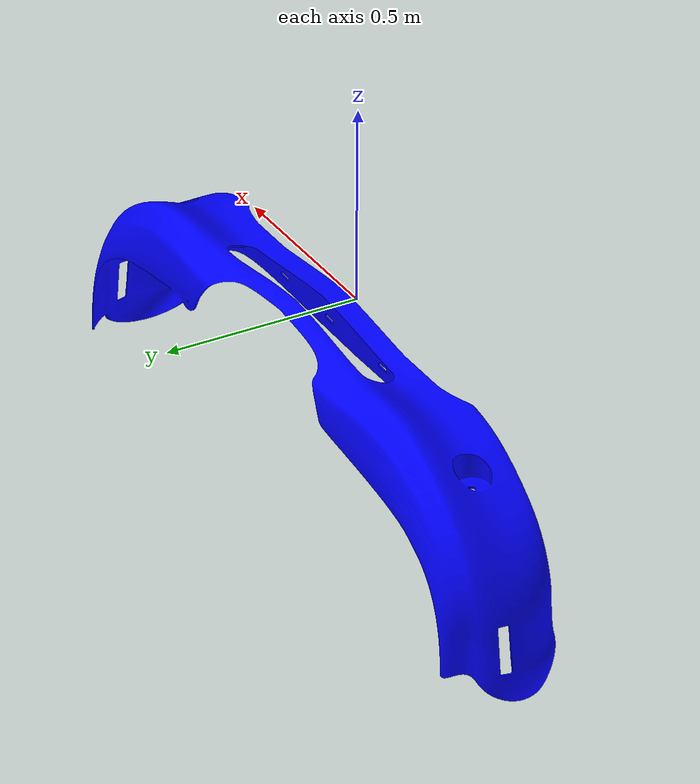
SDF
<?xml version="1.0" ?>
<sdf version="1.6">
  <model name="bumper">

    <pose>0 0 0 0 0 0</pose>

    <static>true</static>

    <link name="bumper">

      <inertial>
        <mass>4.6875</mass>
        <inertia>
          <ixx>0.13401</ixx>
          <ixy>0.00073508</ixy>
          <ixz>0.0021952</ixz>
          <iyy>2.1116</iyy>
          <iyz>-0.0083631</iyz>
          <izz>2.0676</izz>
        </inertia>
      </inertial>

      <collision name="collision">
        <geometry>
          <mesh>
            <uri>model://bumper/bumper.STL</uri>
          </mesh>
        </geometry>
      </collision>

      <visual name="visual">
        <geometry>
          <mesh>
            <uri>model://bumper/bumper.STL</uri>
          </mesh>
        </geometry>
        <material>
          <!-- RGBA format: R G B A (each from 0.0 to 1.0) -->
          <ambient>0.0 0.0 1.0 1.0</ambient>
          <diffuse>0.0 0.0 1.0 1.0</diffuse>
          <specular>0.0 0.0 0.0 1.0</specular>
          <emissive>0.0 0.0 0.0 1.0</emissive>
        </material>
      </visual>

    </link>

  </model>
</sdf>
